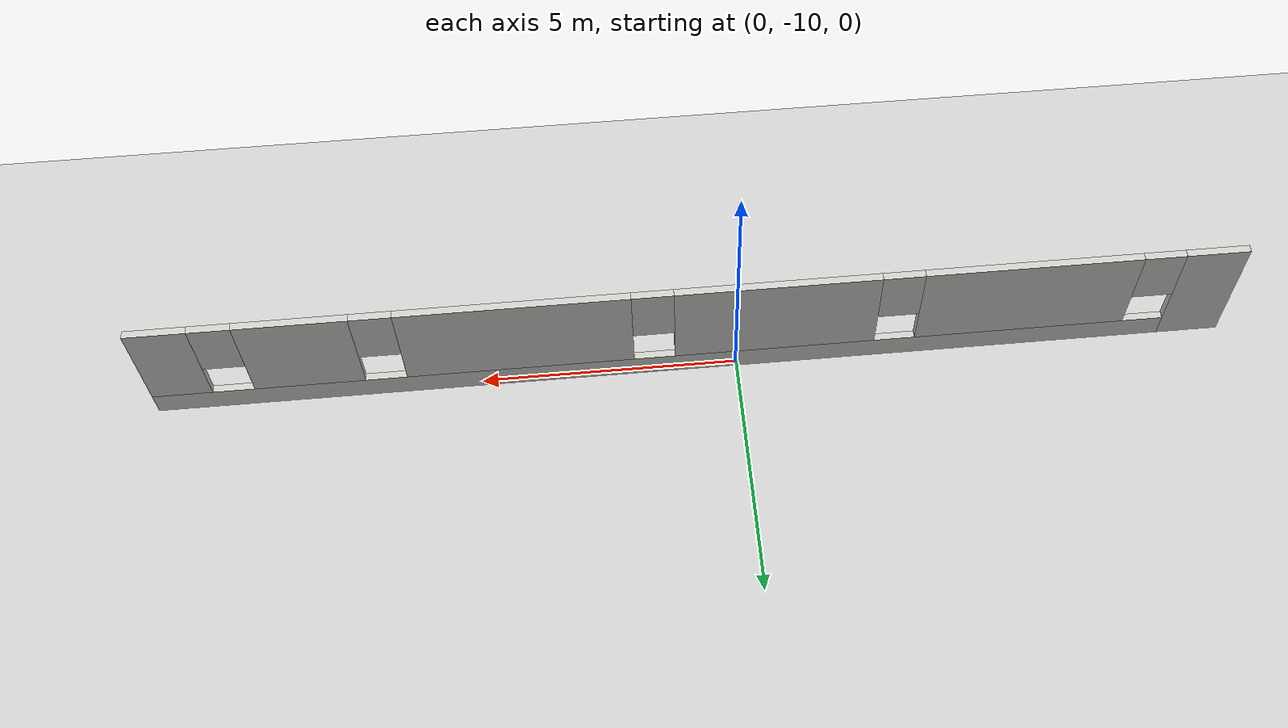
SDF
<sdf version="1.6">
 <world name="default">
  <model name="ground_plane">
   <static>1</static>
   <link name="link">
    <collision name="collision">
     <geometry><plane><normal>0 0 1</normal><size>100 100</size></plane></geometry>
     <surface>
      <contact><collide_bitmask>65535</collide_bitmask></contact>
      <friction><ode><mu>100</mu><mu2>50</mu2></ode></friction>
     </surface>
    </collision>
    <visual name="visual">
     <cast_shadows>0</cast_shadows>
     <geometry><plane><normal>0 0 1</normal><size>100 100</size></plane></geometry>
     <material>
      <script><uri>file://media/materials/scripts/gazebo.material</uri><name>Gazebo/Grey</name></script>
     </material>
    </visual>
   </link>
  </model>
  <model name="Building">
   <link name="Wall_2">
    <pose>-0.009806 -8.675 0 0 -0 0</pose>
    <inertial>
     <mass>1</mass>
     <inertia><ixx>1</ixx><ixy>0</ixy><ixz>0</ixz><iyy>1</iyy><iyz>0</iyz><izz>1</izz></inertia>
    </inertial>
    <visual name="Wall_2_Visual_7">
     <pose>-8.87805 0 1.9 0 -0 0</pose>
     <geometry><box><size>0.8 0.15 1.2</size></box></geometry>
     <material>
      <script><uri>file://media/materials/scripts/gazebo.material</uri><name>Gazebo/CeilingTiled</name></script>
      <ambient>0.5 0.5 0.5 1</ambient>
      <shader type="pixel"><normal_map>__default__</normal_map></shader>
      <diffuse>1 1 1 1</diffuse>
      <specular>0 0 0 1</specular>
      <emissive>0 0 0 1</emissive>
     </material>
     <meta><layer>0</layer></meta>
    </visual>
    <visual name="Wall_2_Visual_5">
     <pose>7.47744 0 1.5 0 -0 0</pose>
     <geometry><box><size>2.12934 0.15 2</size></box></geometry>
     <material>
      <script><uri>file://media/materials/scripts/gazebo.material</uri><name>Gazebo/CeilingTiled</name></script>
      <ambient>0.5 0.5 0.5 1</ambient>
      <shader type="pixel"><normal_map>__default__</normal_map></shader>
      <diffuse>1 1 1 1</diffuse>
      <specular>0 0 0 1</specular>
      <emissive>0 0 0 1</emissive>
     </material>
     <meta><layer>0</layer></meta>
    </visual>
    <visual name="Wall_2_Visual_9">
     <pose>0.805049 0 1.9 0 -0 0</pose>
     <geometry><box><size>0.8 0.15 1.2</size></box></geometry>
     <material>
      <script><uri>file://media/materials/scripts/gazebo.material</uri><name>Gazebo/CeilingTiled</name></script>
      <ambient>0.5 0.5 0.5 1</ambient>
      <shader type="pixel"><normal_map>__default__</normal_map></shader>
      <diffuse>1 1 1 1</diffuse>
      <specular>0 0 0 1</specular>
      <emissive>0 0 0 1</emissive>
     </material>
     <meta><layer>0</layer></meta>
    </visual>
    <visual name="Wall_2_Visual_8">
     <pose>-3.91445 0 1.9 0 -0 0</pose>
     <geometry><box><size>0.8 0.15 1.2</size></box></geometry>
     <material>
      <script><uri>file://media/materials/scripts/gazebo.material</uri><name>Gazebo/CeilingTiled</name></script>
      <ambient>0.5 0.5 0.5 1</ambient>
      <shader type="pixel"><normal_map>__default__</normal_map></shader>
      <diffuse>1 1 1 1</diffuse>
      <specular>0 0 0 1</specular>
      <emissive>0 0 0 1</emissive>
     </material>
     <meta><layer>0</layer></meta>
    </visual>
    <visual name="Wall_2_Visual_4">
     <pose>3.40891 0 1.5 0 -0 0</pose>
     <geometry><box><size>4.40772 0.15 2</size></box></geometry>
     <material>
      <script><uri>file://media/materials/scripts/gazebo.material</uri><name>Gazebo/CeilingTiled</name></script>
      <ambient>0.5 0.5 0.5 1</ambient>
      <shader type="pixel"><normal_map>__default__</normal_map></shader>
      <diffuse>1 1 1 1</diffuse>
      <specular>0 0 0 1</specular>
      <emissive>0 0 0 1</emissive>
     </material>
     <meta><layer>0</layer></meta>
    </visual>
    <visual name="Wall_2_Visual_10">
     <pose>6.01277 0 1.9 0 -0 0</pose>
     <geometry><box><size>0.8 0.15 1.2</size></box></geometry>
     <material>
      <script><uri>file://media/materials/scripts/gazebo.material</uri><name>Gazebo/CeilingTiled</name></script>
      <ambient>0.5 0.5 0.5 1</ambient>
      <shader type="pixel"><normal_map>__default__</normal_map></shader>
      <diffuse>1 1 1 1</diffuse>
      <specular>0 0 0 1</specular>
      <emissive>0 0 0 1</emissive>
     </material>
     <meta><layer>0</layer></meta>
    </visual>
    <visual name="Wall_2_Visual_11">
     <pose>8.94211 0 1.9 0 -0 0</pose>
     <geometry><box><size>0.8 0.15 1.2</size></box></geometry>
     <material>
      <script><uri>file://media/materials/scripts/gazebo.material</uri><name>Gazebo/CeilingTiled</name></script>
      <ambient>0.5 0.5 0.5 1</ambient>
      <shader type="pixel"><normal_map>__default__</normal_map></shader>
      <diffuse>1 1 1 1</diffuse>
      <specular>0 0 0 1</specular>
      <emissive>0 0 0 1</emissive>
     </material>
     <meta><layer>0</layer></meta>
    </visual>
    <visual name="Wall_2_Visual_6">
     <pose>9.92106 0 1.5 0 -0 0</pose>
     <geometry><box><size>1.15789 0.15 2</size></box></geometry>
     <material>
      <script><uri>file://media/materials/scripts/gazebo.material</uri><name>Gazebo/CeilingTiled</name></script>
      <ambient>0.5 0.5 0.5 1</ambient>
      <shader type="pixel"><normal_map>__default__</normal_map></shader>
      <diffuse>1 1 1 1</diffuse>
      <specular>0 0 0 1</specular>
      <emissive>0 0 0 1</emissive>
     </material>
     <meta><layer>0</layer></meta>
    </visual>
    <visual name="Wall_2_Visual_1">
     <pose>0.610973 0 0.25 0 -0 0</pose>
     <geometry><box><size>19.7781 0.15 0.5</size></box></geometry>
     <material>
      <script><uri>file://media/materials/scripts/gazebo.material</uri><name>Gazebo/CeilingTiled</name></script>
      <ambient>0.5 0.5 0.5 1</ambient>
      <shader type="pixel"><normal_map>__default__</normal_map></shader>
      <diffuse>1 1 1 1</diffuse>
      <specular>0 0 0 1</specular>
      <emissive>0 0 0 1</emissive>
     </material>
     <meta><layer>0</layer></meta>
    </visual>
    <visual name="Wall_2_Visual_3">
     <pose>-1.5547 0 1.5 0 -0 0</pose>
     <geometry><box><size>3.9195 0.15 2</size></box></geometry>
     <material>
      <script><uri>file://media/materials/scripts/gazebo.material</uri><name>Gazebo/CeilingTiled</name></script>
      <ambient>0.5 0.5 0.5 1</ambient>
      <shader type="pixel"><normal_map>__default__</normal_map></shader>
      <diffuse>1 1 1 1</diffuse>
      <specular>0 0 0 1</specular>
      <emissive>0 0 0 1</emissive>
     </material>
     <meta><layer>0</layer></meta>
    </visual>
    <visual name="Wall_2_Visual_0">
     <pose>-9.88903 0 1.25 0 -0 0</pose>
     <geometry><box><size>1.22195 0.15 2.5</size></box></geometry>
     <material>
      <script><uri>file://media/materials/scripts/gazebo.material</uri><name>Gazebo/CeilingTiled</name></script>
      <ambient>0.5 0.5 0.5 1</ambient>
      <shader type="pixel"><normal_map>__default__</normal_map></shader>
      <diffuse>1 1 1 1</diffuse>
      <specular>0 0 0 1</specular>
      <emissive>0 0 0 1</emissive>
     </material>
     <meta><layer>0</layer></meta>
    </visual>
    <visual name="Wall_2_Visual_2">
     <pose>-6.39625 0 1.5 0 -0 0</pose>
     <geometry><box><size>4.16361 0.15 2</size></box></geometry>
     <material>
      <script><uri>file://media/materials/scripts/gazebo.material</uri><name>Gazebo/CeilingTiled</name></script>
      <ambient>0.5 0.5 0.5 1</ambient>
      <shader type="pixel"><normal_map>__default__</normal_map></shader>
      <diffuse>1 1 1 1</diffuse>
      <specular>0 0 0 1</specular>
      <emissive>0 0 0 1</emissive>
     </material>
     <meta><layer>0</layer></meta>
    </visual>
    <collision name="Wall_2_Collision_7">
     <pose>-8.87805 0 1.9 0 -0 0</pose>
     <geometry><box><size>0.8 0.15 1.2</size></box></geometry>
     <surface>
      <friction>
       <ode><mu>1</mu><mu2>1</mu2><fdir1>0 0 0</fdir1><slip1>0</slip1><slip2>0</slip2></ode>
       <torsional>
        <coefficient>1</coefficient>
        <patch_radius>0</patch_radius>
        <surface_radius>0</surface_radius>
        <use_patch_radius>1</use_patch_radius>
        <ode><slip>0</slip></ode>
       </torsional>
      </friction>
      <bounce><restitution_coefficient>0</restitution_coefficient><threshold>1e+06</threshold></bounce>
      <contact>
       <collide_without_contact>0</collide_without_contact>
       <collide_without_contact_bitmask>1</collide_without_contact_bitmask>
       <collide_bitmask>1</collide_bitmask>
       <ode>
        <soft_cfm>0</soft_cfm>
        <soft_erp>0.2</soft_erp>
        <kp>1e+13</kp>
        <kd>1</kd>
        <max_vel>0.01</max_vel>
        <min_depth>0</min_depth>
       </ode>
       <bullet>
        <split_impulse>1</split_impulse>
        <split_impulse_penetration_threshold>-0.01</split_impulse_penetration_threshold>
        <soft_cfm>0</soft_cfm>
        <soft_erp>0.2</soft_erp>
        <kp>1e+13</kp>
        <kd>1</kd>
       </bullet>
      </contact>
     </surface>
    </collision>
    <collision name="Wall_2_Collision_1">
     <pose>0.610973 0 0.25 0 -0 0</pose>
     <geometry><box><size>19.7781 0.15 0.5</size></box></geometry>
     <surface>
      <friction>
       <ode><mu>1</mu><mu2>1</mu2><fdir1>0 0 0</fdir1><slip1>0</slip1><slip2>0</slip2></ode>
       <torsional>
        <coefficient>1</coefficient>
        <patch_radius>0</patch_radius>
        <surface_radius>0</surface_radius>
        <use_patch_radius>1</use_patch_radius>
        <ode><slip>0</slip></ode>
       </torsional>
      </friction>
      <bounce><restitution_coefficient>0</restitution_coefficient><threshold>1e+06</threshold></bounce>
      <contact>
       <collide_without_contact>0</collide_without_contact>
       <collide_without_contact_bitmask>1</collide_without_contact_bitmask>
       <collide_bitmask>1</collide_bitmask>
       <ode>
        <soft_cfm>0</soft_cfm>
        <soft_erp>0.2</soft_erp>
        <kp>1e+13</kp>
        <kd>1</kd>
        <max_vel>0.01</max_vel>
        <min_depth>0</min_depth>
       </ode>
       <bullet>
        <split_impulse>1</split_impulse>
        <split_impulse_penetration_threshold>-0.01</split_impulse_penetration_threshold>
        <soft_cfm>0</soft_cfm>
        <soft_erp>0.2</soft_erp>
        <kp>1e+13</kp>
        <kd>1</kd>
       </bullet>
      </contact>
     </surface>
    </collision>
    <collision name="Wall_2_Collision_3">
     <pose>-1.5547 0 1.5 0 -0 0</pose>
     <geometry><box><size>3.9195 0.15 2</size></box></geometry>
     <surface>
      <friction>
       <ode><mu>1</mu><mu2>1</mu2><fdir1>0 0 0</fdir1><slip1>0</slip1><slip2>0</slip2></ode>
       <torsional>
        <coefficient>1</coefficient>
        <patch_radius>0</patch_radius>
        <surface_radius>0</surface_radius>
        <use_patch_radius>1</use_patch_radius>
        <ode><slip>0</slip></ode>
       </torsional>
      </friction>
      <bounce><restitution_coefficient>0</restitution_coefficient><threshold>1e+06</threshold></bounce>
      <contact>
       <collide_without_contact>0</collide_without_contact>
       <collide_without_contact_bitmask>1</collide_without_contact_bitmask>
       <collide_bitmask>1</collide_bitmask>
       <ode>
        <soft_cfm>0</soft_cfm>
        <soft_erp>0.2</soft_erp>
        <kp>1e+13</kp>
        <kd>1</kd>
        <max_vel>0.01</max_vel>
        <min_depth>0</min_depth>
       </ode>
       <bullet>
        <split_impulse>1</split_impulse>
        <split_impulse_penetration_threshold>-0.01</split_impulse_penetration_threshold>
        <soft_cfm>0</soft_cfm>
        <soft_erp>0.2</soft_erp>
        <kp>1e+13</kp>
        <kd>1</kd>
       </bullet>
      </contact>
     </surface>
    </collision>
    <collision name="Wall_2_Collision_11">
     <pose>8.94211 0 1.9 0 -0 0</pose>
     <geometry><box><size>0.8 0.15 1.2</size></box></geometry>
     <surface>
      <friction>
       <ode><mu>1</mu><mu2>1</mu2><fdir1>0 0 0</fdir1><slip1>0</slip1><slip2>0</slip2></ode>
       <torsional>
        <coefficient>1</coefficient>
        <patch_radius>0</patch_radius>
        <surface_radius>0</surface_radius>
        <use_patch_radius>1</use_patch_radius>
        <ode><slip>0</slip></ode>
       </torsional>
      </friction>
      <bounce><restitution_coefficient>0</restitution_coefficient><threshold>1e+06</threshold></bounce>
      <contact>
       <collide_without_contact>0</collide_without_contact>
       <collide_without_contact_bitmask>1</collide_without_contact_bitmask>
       <collide_bitmask>1</collide_bitmask>
       <ode>
        <soft_cfm>0</soft_cfm>
        <soft_erp>0.2</soft_erp>
        <kp>1e+13</kp>
        <kd>1</kd>
        <max_vel>0.01</max_vel>
        <min_depth>0</min_depth>
       </ode>
       <bullet>
        <split_impulse>1</split_impulse>
        <split_impulse_penetration_threshold>-0.01</split_impulse_penetration_threshold>
        <soft_cfm>0</soft_cfm>
        <soft_erp>0.2</soft_erp>
        <kp>1e+13</kp>
        <kd>1</kd>
       </bullet>
      </contact>
     </surface>
    </collision>
    <collision name="Wall_2_Collision_9">
     <pose>0.805049 0 1.9 0 -0 0</pose>
     <geometry><box><size>0.8 0.15 1.2</size></box></geometry>
     <surface>
      <friction>
       <ode><mu>1</mu><mu2>1</mu2><fdir1>0 0 0</fdir1><slip1>0</slip1><slip2>0</slip2></ode>
       <torsional>
        <coefficient>1</coefficient>
        <patch_radius>0</patch_radius>
        <surface_radius>0</surface_radius>
        <use_patch_radius>1</use_patch_radius>
        <ode><slip>0</slip></ode>
       </torsional>
      </friction>
      <bounce><restitution_coefficient>0</restitution_coefficient><threshold>1e+06</threshold></bounce>
      <contact>
       <collide_without_contact>0</collide_without_contact>
       <collide_without_contact_bitmask>1</collide_without_contact_bitmask>
       <collide_bitmask>1</collide_bitmask>
       <ode>
        <soft_cfm>0</soft_cfm>
        <soft_erp>0.2</soft_erp>
        <kp>1e+13</kp>
        <kd>1</kd>
        <max_vel>0.01</max_vel>
        <min_depth>0</min_depth>
       </ode>
       <bullet>
        <split_impulse>1</split_impulse>
        <split_impulse_penetration_threshold>-0.01</split_impulse_penetration_threshold>
        <soft_cfm>0</soft_cfm>
        <soft_erp>0.2</soft_erp>
        <kp>1e+13</kp>
        <kd>1</kd>
       </bullet>
      </contact>
     </surface>
    </collision>
    <collision name="Wall_2_Collision_5">
     <pose>7.47744 0 1.5 0 -0 0</pose>
     <geometry><box><size>2.12934 0.15 2</size></box></geometry>
     <surface>
      <friction>
       <ode><mu>1</mu><mu2>1</mu2><fdir1>0 0 0</fdir1><slip1>0</slip1><slip2>0</slip2></ode>
       <torsional>
        <coefficient>1</coefficient>
        <patch_radius>0</patch_radius>
        <surface_radius>0</surface_radius>
        <use_patch_radius>1</use_patch_radius>
        <ode><slip>0</slip></ode>
       </torsional>
      </friction>
      <bounce><restitution_coefficient>0</restitution_coefficient><threshold>1e+06</threshold></bounce>
      <contact>
       <collide_without_contact>0</collide_without_contact>
       <collide_without_contact_bitmask>1</collide_without_contact_bitmask>
       <collide_bitmask>1</collide_bitmask>
       <ode>
        <soft_cfm>0</soft_cfm>
        <soft_erp>0.2</soft_erp>
        <kp>1e+13</kp>
        <kd>1</kd>
        <max_vel>0.01</max_vel>
        <min_depth>0</min_depth>
       </ode>
       <bullet>
        <split_impulse>1</split_impulse>
        <split_impulse_penetration_threshold>-0.01</split_impulse_penetration_threshold>
        <soft_cfm>0</soft_cfm>
        <soft_erp>0.2</soft_erp>
        <kp>1e+13</kp>
        <kd>1</kd>
       </bullet>
      </contact>
     </surface>
    </collision>
    <collision name="Wall_2_Collision_4">
     <pose>3.40891 0 1.5 0 -0 0</pose>
     <geometry><box><size>4.40772 0.15 2</size></box></geometry>
     <surface>
      <friction>
       <ode><mu>1</mu><mu2>1</mu2><fdir1>0 0 0</fdir1><slip1>0</slip1><slip2>0</slip2></ode>
       <torsional>
        <coefficient>1</coefficient>
        <patch_radius>0</patch_radius>
        <surface_radius>0</surface_radius>
        <use_patch_radius>1</use_patch_radius>
        <ode><slip>0</slip></ode>
       </torsional>
      </friction>
      <bounce><restitution_coefficient>0</restitution_coefficient><threshold>1e+06</threshold></bounce>
      <contact>
       <collide_without_contact>0</collide_without_contact>
       <collide_without_contact_bitmask>1</collide_without_contact_bitmask>
       <collide_bitmask>1</collide_bitmask>
       <ode>
        <soft_cfm>0</soft_cfm>
        <soft_erp>0.2</soft_erp>
        <kp>1e+13</kp>
        <kd>1</kd>
        <max_vel>0.01</max_vel>
        <min_depth>0</min_depth>
       </ode>
       <bullet>
        <split_impulse>1</split_impulse>
        <split_impulse_penetration_threshold>-0.01</split_impulse_penetration_threshold>
        <soft_cfm>0</soft_cfm>
        <soft_erp>0.2</soft_erp>
        <kp>1e+13</kp>
        <kd>1</kd>
       </bullet>
      </contact>
     </surface>
    </collision>
    <collision name="Wall_2_Collision_0">
     <pose>-9.88903 0 1.25 0 -0 0</pose>
     <geometry><box><size>1.22195 0.15 2.5</size></box></geometry>
     <surface>
      <friction>
       <ode><mu>1</mu><mu2>1</mu2><fdir1>0 0 0</fdir1><slip1>0</slip1><slip2>0</slip2></ode>
       <torsional>
        <coefficient>1</coefficient>
        <patch_radius>0</patch_radius>
        <surface_radius>0</surface_radius>
        <use_patch_radius>1</use_patch_radius>
        <ode><slip>0</slip></ode>
       </torsional>
      </friction>
      <bounce><restitution_coefficient>0</restitution_coefficient><threshold>1e+06</threshold></bounce>
      <contact>
       <collide_without_contact>0</collide_without_contact>
       <collide_without_contact_bitmask>1</collide_without_contact_bitmask>
       <collide_bitmask>1</collide_bitmask>
       <ode>
        <soft_cfm>0</soft_cfm>
        <soft_erp>0.2</soft_erp>
        <kp>1e+13</kp>
        <kd>1</kd>
        <max_vel>0.01</max_vel>
        <min_depth>0</min_depth>
       </ode>
       <bullet>
        <split_impulse>1</split_impulse>
        <split_impulse_penetration_threshold>-0.01</split_impulse_penetration_threshold>
        <soft_cfm>0</soft_cfm>
        <soft_erp>0.2</soft_erp>
        <kp>1e+13</kp>
        <kd>1</kd>
       </bullet>
      </contact>
     </surface>
    </collision>
    <collision name="Wall_2_Collision_2">
     <pose>-6.39625 0 1.5 0 -0 0</pose>
     <geometry><box><size>4.16361 0.15 2</size></box></geometry>
     <surface>
      <friction>
       <ode><mu>1</mu><mu2>1</mu2><fdir1>0 0 0</fdir1><slip1>0</slip1><slip2>0</slip2></ode>
       <torsional>
        <coefficient>1</coefficient>
        <patch_radius>0</patch_radius>
        <surface_radius>0</surface_radius>
        <use_patch_radius>1</use_patch_radius>
        <ode><slip>0</slip></ode>
       </torsional>
      </friction>
      <bounce><restitution_coefficient>0</restitution_coefficient><threshold>1e+06</threshold></bounce>
      <contact>
       <collide_without_contact>0</collide_without_contact>
       <collide_without_contact_bitmask>1</collide_without_contact_bitmask>
       <collide_bitmask>1</collide_bitmask>
       <ode>
        <soft_cfm>0</soft_cfm>
        <soft_erp>0.2</soft_erp>
        <kp>1e+13</kp>
        <kd>1</kd>
        <max_vel>0.01</max_vel>
        <min_depth>0</min_depth>
       </ode>
       <bullet>
        <split_impulse>1</split_impulse>
        <split_impulse_penetration_threshold>-0.01</split_impulse_penetration_threshold>
        <soft_cfm>0</soft_cfm>
        <soft_erp>0.2</soft_erp>
        <kp>1e+13</kp>
        <kd>1</kd>
       </bullet>
      </contact>
     </surface>
    </collision>
    <collision name="Wall_2_Collision_6">
     <pose>9.92106 0 1.5 0 -0 0</pose>
     <geometry><box><size>1.15789 0.15 2</size></box></geometry>
     <surface>
      <friction>
       <ode><mu>1</mu><mu2>1</mu2><fdir1>0 0 0</fdir1><slip1>0</slip1><slip2>0</slip2></ode>
       <torsional>
        <coefficient>1</coefficient>
        <patch_radius>0</patch_radius>
        <surface_radius>0</surface_radius>
        <use_patch_radius>1</use_patch_radius>
        <ode><slip>0</slip></ode>
       </torsional>
      </friction>
      <bounce><restitution_coefficient>0</restitution_coefficient><threshold>1e+06</threshold></bounce>
      <contact>
       <collide_without_contact>0</collide_without_contact>
       <collide_without_contact_bitmask>1</collide_without_contact_bitmask>
       <collide_bitmask>1</collide_bitmask>
       <ode>
        <soft_cfm>0</soft_cfm>
        <soft_erp>0.2</soft_erp>
        <kp>1e+13</kp>
        <kd>1</kd>
        <max_vel>0.01</max_vel>
        <min_depth>0</min_depth>
       </ode>
       <bullet>
        <split_impulse>1</split_impulse>
        <split_impulse_penetration_threshold>-0.01</split_impulse_penetration_threshold>
        <soft_cfm>0</soft_cfm>
        <soft_erp>0.2</soft_erp>
        <kp>1e+13</kp>
        <kd>1</kd>
       </bullet>
      </contact>
     </surface>
    </collision>
    <collision name="Wall_2_Collision_8">
     <pose>-3.91445 0 1.9 0 -0 0</pose>
     <geometry><box><size>0.8 0.15 1.2</size></box></geometry>
     <surface>
      <friction>
       <ode><mu>1</mu><mu2>1</mu2><fdir1>0 0 0</fdir1><slip1>0</slip1><slip2>0</slip2></ode>
       <torsional>
        <coefficient>1</coefficient>
        <patch_radius>0</patch_radius>
        <surface_radius>0</surface_radius>
        <use_patch_radius>1</use_patch_radius>
        <ode><slip>0</slip></ode>
       </torsional>
      </friction>
      <bounce><restitution_coefficient>0</restitution_coefficient><threshold>1e+06</threshold></bounce>
      <contact>
       <collide_without_contact>0</collide_without_contact>
       <collide_without_contact_bitmask>1</collide_without_contact_bitmask>
       <collide_bitmask>1</collide_bitmask>
       <ode>
        <soft_cfm>0</soft_cfm>
        <soft_erp>0.2</soft_erp>
        <kp>1e+13</kp>
        <kd>1</kd>
        <max_vel>0.01</max_vel>
        <min_depth>0</min_depth>
       </ode>
       <bullet>
        <split_impulse>1</split_impulse>
        <split_impulse_penetration_threshold>-0.01</split_impulse_penetration_threshold>
        <soft_cfm>0</soft_cfm>
        <soft_erp>0.2</soft_erp>
        <kp>1e+13</kp>
        <kd>1</kd>
       </bullet>
      </contact>
     </surface>
    </collision>
    <collision name="Wall_2_Collision_10">
     <pose>6.01277 0 1.9 0 -0 0</pose>
     <geometry><box><size>0.8 0.15 1.2</size></box></geometry>
     <surface>
      <friction>
       <ode><mu>1</mu><mu2>1</mu2><fdir1>0 0 0</fdir1><slip1>0</slip1><slip2>0</slip2></ode>
       <torsional>
        <coefficient>1</coefficient>
        <patch_radius>0</patch_radius>
        <surface_radius>0</surface_radius>
        <use_patch_radius>1</use_patch_radius>
        <ode><slip>0</slip></ode>
       </torsional>
      </friction>
      <bounce><restitution_coefficient>0</restitution_coefficient><threshold>1e+06</threshold></bounce>
      <contact>
       <collide_without_contact>0</collide_without_contact>
       <collide_without_contact_bitmask>1</collide_without_contact_bitmask>
       <collide_bitmask>1</collide_bitmask>
       <ode>
        <soft_cfm>0</soft_cfm>
        <soft_erp>0.2</soft_erp>
        <kp>1e+13</kp>
        <kd>1</kd>
        <max_vel>0.01</max_vel>
        <min_depth>0</min_depth>
       </ode>
       <bullet>
        <split_impulse>1</split_impulse>
        <split_impulse_penetration_threshold>-0.01</split_impulse_penetration_threshold>
        <soft_cfm>0</soft_cfm>
        <soft_erp>0.2</soft_erp>
        <kp>1e+13</kp>
        <kd>1</kd>
       </bullet>
      </contact>
     </surface>
    </collision>
   </link>
   <static>1</static>
   <pose>0.81107 -1.31925 0 0 -0 0</pose>
  </model>
 </world>
</sdf>
